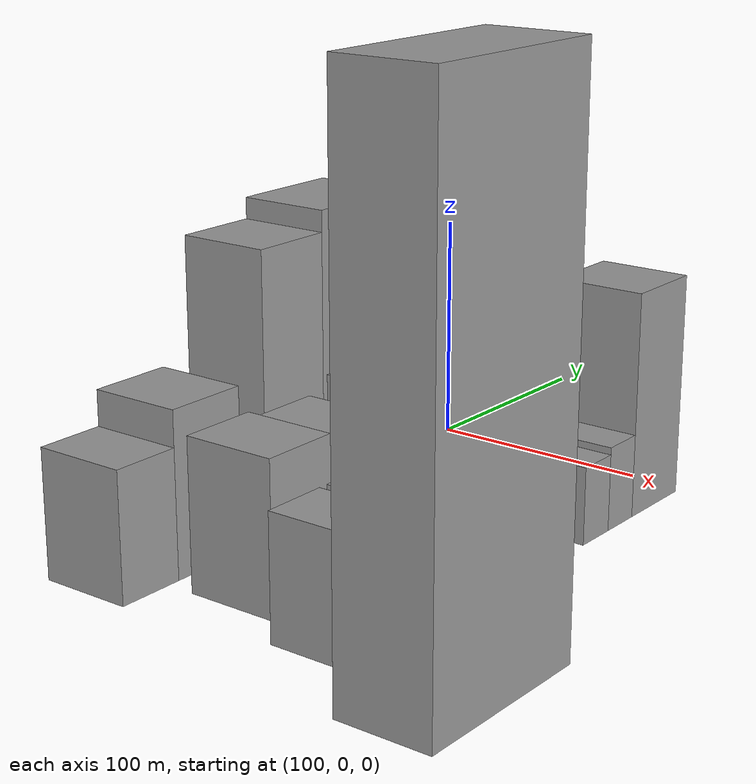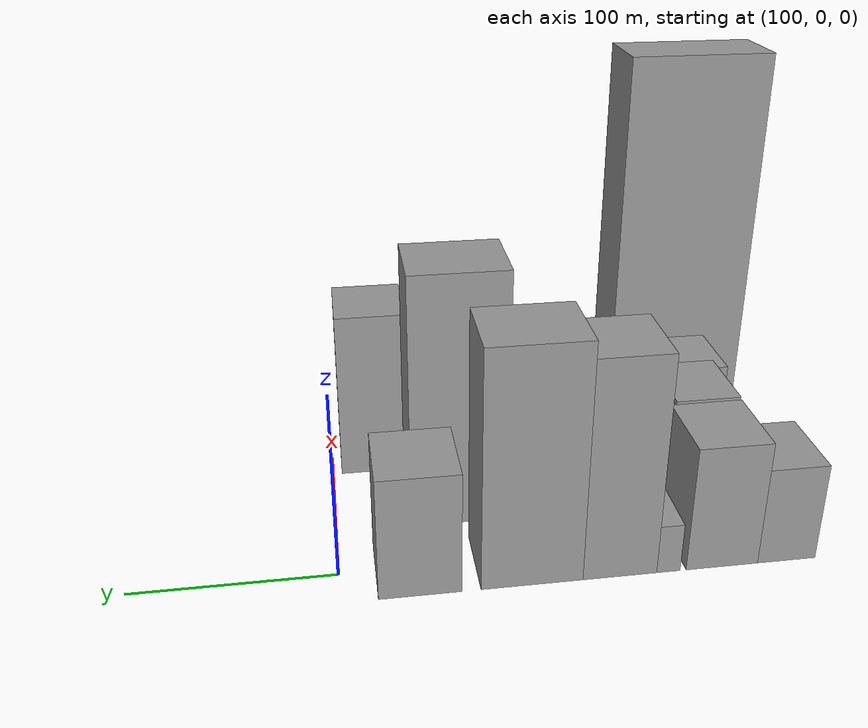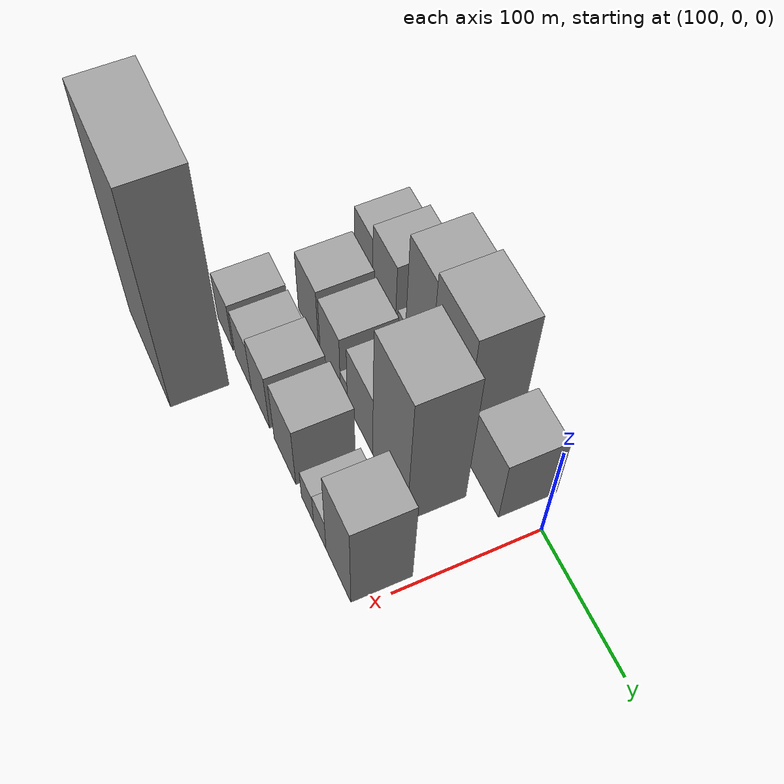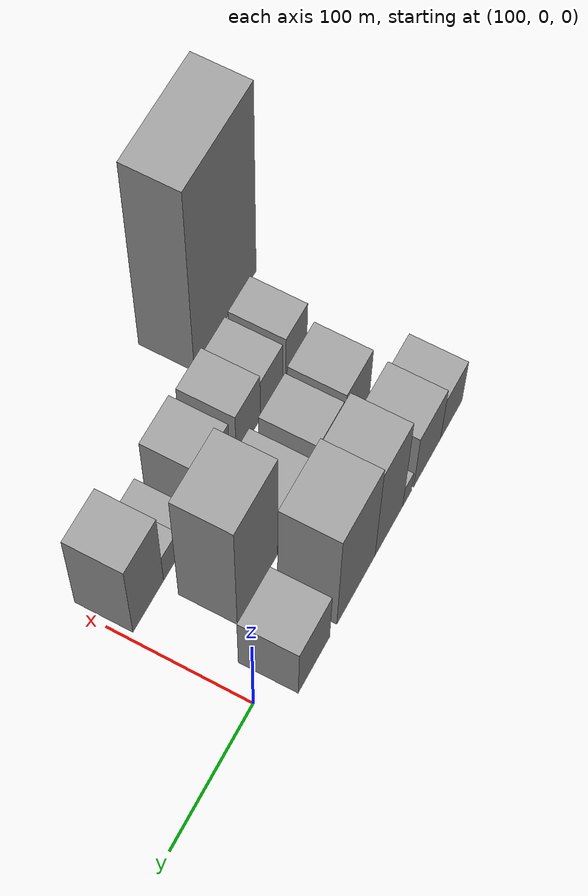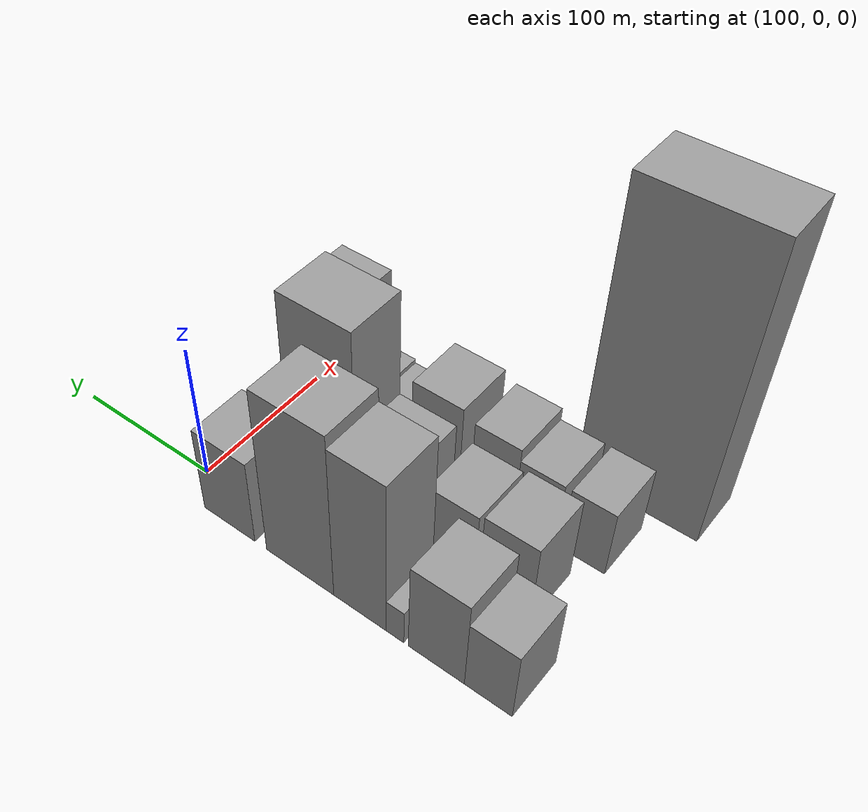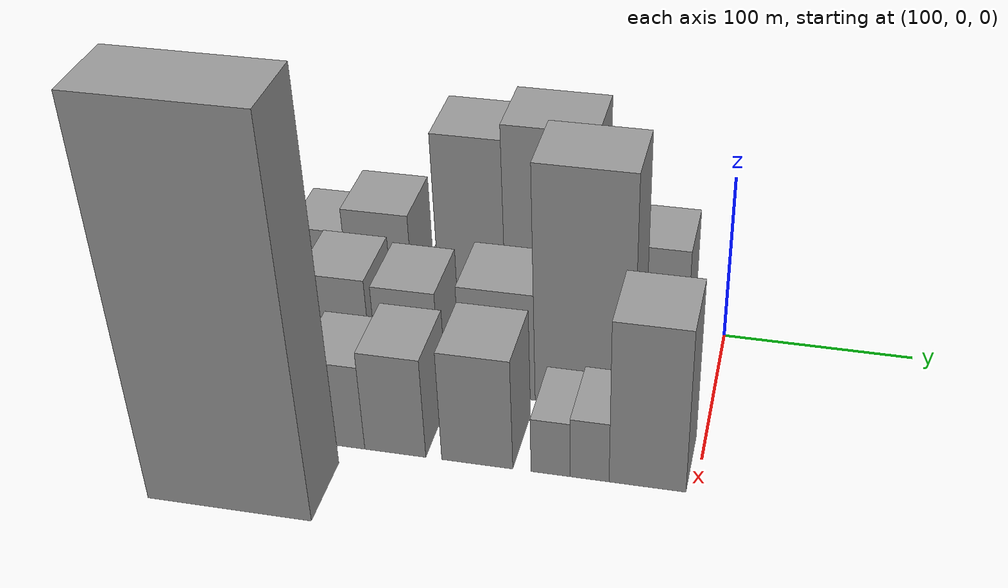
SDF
<sdf version="1.6">
 <world name="default">
  <model name="building_22">
   <static>1</static>
   <pose>100.0000 -218.7330 0 0.000000 0.000000 0.000000</pose>
   <link name="link">
    <pose>0 0 27.00 0 0 0</pose>
    <collision name="collision"><geometry><box><size>40.0000 29.7443 54.0000</size></box></geometry></collision>
    <visual name="visual">
     <cast_shadows>0</cast_shadows>
     <geometry><box><size>40.0000 29.7443 54.0000</size></box></geometry>
     <material>
      <script>
       <uri>model://grey_wall/materials/scripts</uri>
       <uri>model://grey_wall/materials/textures</uri>
       <name>vrc/grey_wall</name>
      </script>
     </material>
    </visual>
   </link>
  </model>
  <model name="building_23">
   <static>1</static>
   <pose>100.0000 -185.6382 0 0.000000 0.000000 0.000000</pose>
   <link name="link">
    <pose>0 0 34.50 0 0 0</pose>
    <collision name="collision"><geometry><box><size>40.0000 36.4452 69.0000</size></box></geometry></collision>
    <visual name="visual">
     <cast_shadows>0</cast_shadows>
     <geometry><box><size>40.0000 36.4452 69.0000</size></box></geometry>
     <material>
      <script>
       <uri>model://grey_wall/materials/scripts</uri>
       <uri>model://grey_wall/materials/textures</uri>
       <name>vrc/grey_wall</name>
      </script>
     </material>
    </visual>
   </link>
  </model>
  <model name="building_24">
   <static>1</static>
   <pose>100.0000 -158.5348 0 0.000000 0.000000 0.000000</pose>
   <link name="link">
    <pose>0 0 13.50 0 0 0</pose>
    <collision name="collision"><geometry><box><size>40.0000 11.7615 27.0000</size></box></geometry></collision>
    <visual name="visual">
     <cast_shadows>0</cast_shadows>
     <geometry><box><size>40.0000 11.7615 27.0000</size></box></geometry>
     <material>
      <script>
       <uri>model://grey_wall/materials/scripts</uri>
       <uri>model://grey_wall/materials/textures</uri>
       <name>vrc/grey_wall</name>
      </script>
     </material>
    </visual>
   </link>
  </model>
  <model name="building_25">
   <static>1</static>
   <pose>100.0000 -134.3453 0 0.000000 0.000000 0.000000</pose>
   <link name="link">
    <pose>0 0 60.00 0 0 0</pose>
    <collision name="collision"><geometry><box><size>40.0000 36.6176 120.0000</size></box></geometry></collision>
    <visual name="visual">
     <cast_shadows>0</cast_shadows>
     <geometry><box><size>40.0000 36.6176 120.0000</size></box></geometry>
     <material>
      <script>
       <uri>model://grey_wall/materials/scripts</uri>
       <uri>model://grey_wall/materials/textures</uri>
       <name>vrc/grey_wall</name>
      </script>
     </material>
    </visual>
   </link>
  </model>
  <model name="building_26">
   <static>1</static>
   <pose>100.0000 -91.2927 0 0.000000 0.000000 0.000000</pose>
   <link name="link">
    <pose>0 0 64.50 0 0 0</pose>
    <collision name="collision"><geometry><box><size>40.0000 49.4875 129.0000</size></box></geometry></collision>
    <visual name="visual">
     <cast_shadows>0</cast_shadows>
     <geometry><box><size>40.0000 49.4875 129.0000</size></box></geometry>
     <material>
      <script>
       <uri>model://grey_wall/materials/scripts</uri>
       <uri>model://grey_wall/materials/textures</uri>
       <name>vrc/grey_wall</name>
      </script>
     </material>
    </visual>
   </link>
  </model>
  <model name="building_27">
   <static>1</static>
   <pose>100.0000 -37.7616 0 0.000000 0.000000 0.000000</pose>
   <link name="link">
    <pose>0 0 33.00 0 0 0</pose>
    <collision name="collision"><geometry><box><size>40.0000 39.5747 66.0000</size></box></geometry></collision>
    <visual name="visual">
     <cast_shadows>0</cast_shadows>
     <geometry><box><size>40.0000 39.5747 66.0000</size></box></geometry>
     <material>
      <script>
       <uri>model://grey_wall/materials/scripts</uri>
       <uri>model://grey_wall/materials/textures</uri>
       <name>vrc/grey_wall</name>
      </script>
     </material>
    </visual>
   </link>
  </model>
  <model name="building_68">
   <static>1</static>
   <pose>152.0000 -192.2192 0 0.000000 0.000000 0.000000</pose>
   <link name="link">
    <pose>0 0 31.50 0 0 0</pose>
    <collision name="collision"><geometry><box><size>40.0000 34.0734 63.0000</size></box></geometry></collision>
    <visual name="visual">
     <cast_shadows>0</cast_shadows>
     <geometry><box><size>40.0000 34.0734 63.0000</size></box></geometry>
     <material>
      <script>
       <uri>model://grey_wall/materials/scripts</uri>
       <uri>model://grey_wall/materials/textures</uri>
       <name>vrc/grey_wall</name>
      </script>
     </material>
    </visual>
   </link>
  </model>
  <model name="building_69">
   <static>1</static>
   <pose>152.0000 -155.6423 0 0.000000 0.000000 0.000000</pose>
   <link name="link">
    <pose>0 0 30.00 0 0 0</pose>
    <collision name="collision"><geometry><box><size>40.0000 33.0803 60.0000</size></box></geometry></collision>
    <visual name="visual">
     <cast_shadows>0</cast_shadows>
     <geometry><box><size>40.0000 33.0803 60.0000</size></box></geometry>
     <material>
      <script>
       <uri>model://grey_wall/materials/scripts</uri>
       <uri>model://grey_wall/materials/textures</uri>
       <name>vrc/grey_wall</name>
      </script>
     </material>
    </visual>
   </link>
  </model>
  <model name="building_70">
   <static>1</static>
   <pose>152.0000 -133.5895 0 0.000000 0.000000 0.000000</pose>
   <link name="link">
    <pose>0 0 12.00 0 0 0</pose>
    <collision name="collision"><geometry><box><size>40.0000 11.0254 24.0000</size></box></geometry></collision>
    <visual name="visual">
     <cast_shadows>0</cast_shadows>
     <geometry><box><size>40.0000 11.0254 24.0000</size></box></geometry>
     <material>
      <script>
       <uri>model://grey_wall/materials/scripts</uri>
       <uri>model://grey_wall/materials/textures</uri>
       <name>vrc/grey_wall</name>
      </script>
     </material>
    </visual>
   </link>
  </model>
  <model name="building_71">
   <static>1</static>
   <pose>152.0000 -108.5377 0 0.000000 0.000000 0.000000</pose>
   <link name="link">
    <pose>0 0 33.00 0 0 0</pose>
    <collision name="collision"><geometry><box><size>40.0000 39.0782 66.0000</size></box></geometry></collision>
    <visual name="visual">
     <cast_shadows>0</cast_shadows>
     <geometry><box><size>40.0000 39.0782 66.0000</size></box></geometry>
     <material>
      <script>
       <uri>model://grey_wall/materials/scripts</uri>
       <uri>model://grey_wall/materials/textures</uri>
       <name>vrc/grey_wall</name>
      </script>
     </material>
    </visual>
   </link>
  </model>
  <model name="building_72">
   <static>1</static>
   <pose>152.0000 -63.7319 0 0.000000 0.000000 0.000000</pose>
   <link name="link">
    <pose>0 0 70.50 0 0 0</pose>
    <collision name="collision"><geometry><box><size>40.0000 50.5334 141.0000</size></box></geometry></collision>
    <visual name="visual">
     <cast_shadows>0</cast_shadows>
     <geometry><box><size>40.0000 50.5334 141.0000</size></box></geometry>
     <material>
      <script>
       <uri>model://grey_wall/materials/scripts</uri>
       <uri>model://grey_wall/materials/textures</uri>
       <name>vrc/grey_wall</name>
      </script>
     </material>
    </visual>
   </link>
  </model>
  <model name="building_116">
   <static>1</static>
   <pose>204.0000 -210.1144 0 0.000000 0.000000 0.000000</pose>
   <link name="link">
    <pose>0 0 25.50 0 0 0</pose>
    <collision name="collision"><geometry><box><size>40.0000 27.9976 51.0000</size></box></geometry></collision>
    <visual name="visual">
     <cast_shadows>0</cast_shadows>
     <geometry><box><size>40.0000 27.9976 51.0000</size></box></geometry>
     <material>
      <script>
       <uri>model://grey_wall/materials/scripts</uri>
       <uri>model://grey_wall/materials/textures</uri>
       <name>vrc/grey_wall</name>
      </script>
     </material>
    </visual>
   </link>
  </model>
  <model name="building_117">
   <static>1</static>
   <pose>204.0000 -177.6629 0 0.000000 0.000000 0.000000</pose>
   <link name="link">
    <pose>0 0 25.50 0 0 0</pose>
    <collision name="collision"><geometry><box><size>40.0000 28.9055 51.0000</size></box></geometry></collision>
    <visual name="visual">
     <cast_shadows>0</cast_shadows>
     <geometry><box><size>40.0000 28.9055 51.0000</size></box></geometry>
     <material>
      <script>
       <uri>model://grey_wall/materials/scripts</uri>
       <uri>model://grey_wall/materials/textures</uri>
       <name>vrc/grey_wall</name>
      </script>
     </material>
    </visual>
   </link>
  </model>
  <model name="building_118">
   <static>1</static>
   <pose>204.0000 -147.7347 0 0.000000 0.000000 0.000000</pose>
   <link name="link">
    <pose>0 0 30.00 0 0 0</pose>
    <collision name="collision"><geometry><box><size>40.0000 30.9509 60.0000</size></box></geometry></collision>
    <visual name="visual">
     <cast_shadows>0</cast_shadows>
     <geometry><box><size>40.0000 30.9509 60.0000</size></box></geometry>
     <material>
      <script>
       <uri>model://grey_wall/materials/scripts</uri>
       <uri>model://grey_wall/materials/textures</uri>
       <name>vrc/grey_wall</name>
      </script>
     </material>
    </visual>
   </link>
  </model>
  <model name="building_119">
   <static>1</static>
   <pose>204.0000 -106.5356 0 0.000000 0.000000 0.000000</pose>
   <link name="link">
    <pose>0 0 33.00 0 0 0</pose>
    <collision name="collision"><geometry><box><size>40.0000 35.4473 66.0000</size></box></geometry></collision>
    <visual name="visual">
     <cast_shadows>0</cast_shadows>
     <geometry><box><size>40.0000 35.4473 66.0000</size></box></geometry>
     <material>
      <script>
       <uri>model://grey_wall/materials/scripts</uri>
       <uri>model://grey_wall/materials/textures</uri>
       <name>vrc/grey_wall</name>
      </script>
     </material>
    </visual>
   </link>
  </model>
  <model name="building_120">
   <static>1</static>
   <pose>204.0000 -70.2847 0 0.000000 0.000000 0.000000</pose>
   <link name="link">
    <pose>0 0 16.50 0 0 0</pose>
    <collision name="collision"><geometry><box><size>40.0000 19.0546 33.0000</size></box></geometry></collision>
    <visual name="visual">
     <cast_shadows>0</cast_shadows>
     <geometry><box><size>40.0000 19.0546 33.0000</size></box></geometry>
     <material>
      <script>
       <uri>model://grey_wall/materials/scripts</uri>
       <uri>model://grey_wall/materials/textures</uri>
       <name>vrc/grey_wall</name>
      </script>
     </material>
    </visual>
   </link>
  </model>
  <model name="building_121">
   <static>1</static>
   <pose>204.0000 -51.2398 0 0.000000 0.000000 0.000000</pose>
   <link name="link">
    <pose>0 0 18.00 0 0 0</pose>
    <collision name="collision"><geometry><box><size>40.0000 19.0352 36.0000</size></box></geometry></collision>
    <visual name="visual">
     <cast_shadows>0</cast_shadows>
     <geometry><box><size>40.0000 19.0352 36.0000</size></box></geometry>
     <material>
      <script>
       <uri>model://grey_wall/materials/scripts</uri>
       <uri>model://grey_wall/materials/textures</uri>
       <name>vrc/grey_wall</name>
      </script>
     </material>
    </visual>
   </link>
  </model>
  <model name="building_122">
   <static>1</static>
   <pose>204.0000 -23.2414 0 0.000000 0.000000 0.000000</pose>
   <link name="link">
    <pose>0 0 48.00 0 0 0</pose>
    <collision name="collision"><geometry><box><size>40.0000 36.9616 96.0000</size></box></geometry></collision>
    <visual name="visual">
     <cast_shadows>0</cast_shadows>
     <geometry><box><size>40.0000 36.9616 96.0000</size></box></geometry>
     <material>
      <script>
       <uri>model://grey_wall/materials/scripts</uri>
       <uri>model://grey_wall/materials/textures</uri>
       <name>vrc/grey_wall</name>
      </script>
     </material>
    </visual>
   </link>
  </model>
  <model name="building_169">
   <static>1</static>
   <pose>256.0000 -212.9018 0 0.000000 0.000000 0.000000</pose>
   <link name="link">
    <pose>0 0 108.00 0 0 0</pose>
    <collision name="collision"><geometry><box><size>40.0000 80.7092 216.0000</size></box></geometry></collision>
    <visual name="visual">
     <cast_shadows>0</cast_shadows>
     <geometry><box><size>40.0000 80.7092 216.0000</size></box></geometry>
     <material>
      <script>
       <uri>model://grey_wall/materials/scripts</uri>
       <uri>model://grey_wall/materials/textures</uri>
       <name>vrc/grey_wall</name>
      </script>
     </material>
    </visual>
   </link>
  </model>
 </world>
</sdf>
